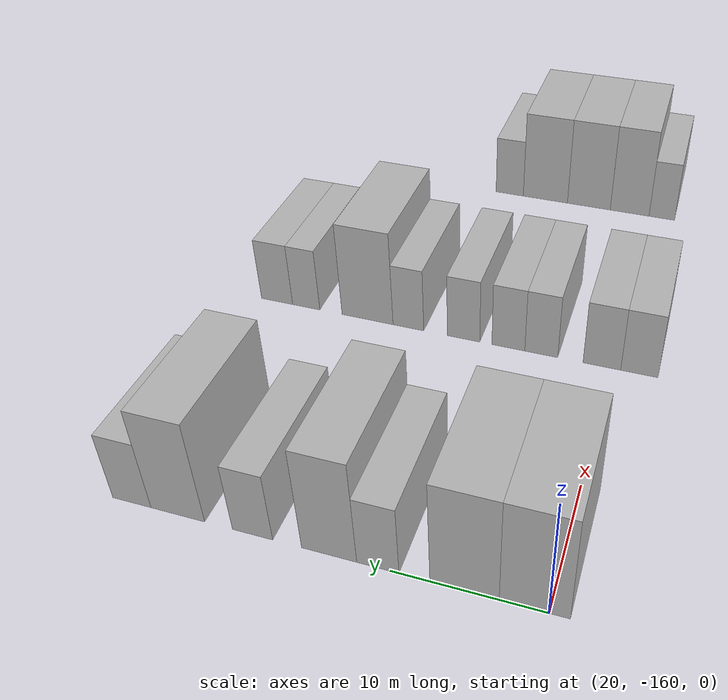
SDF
<sdf version="1.6">
 <world name="default">
  <model name="building_23">
   <static>1</static>
   <pose>25.0000 -159.0883 0 0.000000 0.000000 0.000000</pose>
   <link name="link">
    <pose>0 0 4.50 0 0 0</pose>
    <collision name="collision"><geometry><box><size>10.0000 4.3348 9.0000</size></box></geometry></collision>
    <visual name="visual">
     <cast_shadows>0</cast_shadows>
     <geometry><box><size>10.0000 4.3348 9.0000</size></box></geometry>
     <material>
      <script>
       <uri>model://HANNAS_wall/materials/scripts</uri>
       <uri>model://HANNAS_wall/materials/textures</uri>
       <name>vrc/HANNAS_wall</name>
      </script>
     </material>
    </visual>
   </link>
  </model>
  <model name="building_24">
   <static>1</static>
   <pose>25.0000 -154.7398 0 0.000000 0.000000 0.000000</pose>
   <link name="link">
    <pose>0 0 4.50 0 0 0</pose>
    <collision name="collision"><geometry><box><size>10.0000 4.3622 9.0000</size></box></geometry></collision>
    <visual name="visual">
     <cast_shadows>0</cast_shadows>
     <geometry><box><size>10.0000 4.3622 9.0000</size></box></geometry>
     <material>
      <script>
       <uri>model://HANNAS_wall/materials/scripts</uri>
       <uri>model://HANNAS_wall/materials/textures</uri>
       <name>vrc/HANNAS_wall</name>
      </script>
     </material>
    </visual>
   </link>
  </model>
  <model name="building_25">
   <static>1</static>
   <pose>25.0000 -149.1673 0 0.000000 0.000000 0.000000</pose>
   <link name="link">
    <pose>0 0 3.00 0 0 0</pose>
    <collision name="collision"><geometry><box><size>10.0000 2.7828 6.0000</size></box></geometry></collision>
    <visual name="visual">
     <cast_shadows>0</cast_shadows>
     <geometry><box><size>10.0000 2.7828 6.0000</size></box></geometry>
     <material>
      <script>
       <uri>model://HANNAS_wall/materials/scripts</uri>
       <uri>model://HANNAS_wall/materials/textures</uri>
       <name>vrc/HANNAS_wall</name>
      </script>
     </material>
    </visual>
   </link>
  </model>
  <model name="building_26">
   <static>1</static>
   <pose>25.0000 -145.9105 0 0.000000 0.000000 0.000000</pose>
   <link name="link">
    <pose>0 0 4.50 0 0 0</pose>
    <collision name="collision"><geometry><box><size>10.0000 3.7306 9.0000</size></box></geometry></collision>
    <visual name="visual">
     <cast_shadows>0</cast_shadows>
     <geometry><box><size>10.0000 3.7306 9.0000</size></box></geometry>
     <material>
      <script>
       <uri>model://HANNAS_wall/materials/scripts</uri>
       <uri>model://HANNAS_wall/materials/textures</uri>
       <name>vrc/HANNAS_wall</name>
      </script>
     </material>
    </visual>
   </link>
  </model>
  <model name="building_27">
   <static>1</static>
   <pose>25.0000 -140.6263 0 0.000000 0.000000 0.000000</pose>
   <link name="link">
    <pose>0 0 3.00 0 0 0</pose>
    <collision name="collision"><geometry><box><size>10.0000 2.8379 6.0000</size></box></geometry></collision>
    <visual name="visual">
     <cast_shadows>0</cast_shadows>
     <geometry><box><size>10.0000 2.8379 6.0000</size></box></geometry>
     <material>
      <script>
       <uri>model://HANNAS_wall/materials/scripts</uri>
       <uri>model://HANNAS_wall/materials/textures</uri>
       <name>vrc/HANNAS_wall</name>
      </script>
     </material>
    </visual>
   </link>
  </model>
  <model name="building_28">
   <static>1</static>
   <pose>25.0000 -135.2350 0 0.000000 0.000000 0.000000</pose>
   <link name="link">
    <pose>0 0 4.50 0 0 0</pose>
    <collision name="collision"><geometry><box><size>10.0000 3.9448 9.0000</size></box></geometry></collision>
    <visual name="visual">
     <cast_shadows>0</cast_shadows>
     <geometry><box><size>10.0000 3.9448 9.0000</size></box></geometry>
     <material>
      <script>
       <uri>model://HANNAS_wall/materials/scripts</uri>
       <uri>model://HANNAS_wall/materials/textures</uri>
       <name>vrc/HANNAS_wall</name>
      </script>
     </material>
    </visual>
   </link>
  </model>
  <model name="building_29">
   <static>1</static>
   <pose>25.0000 -131.8254 0 0.000000 0.000000 0.000000</pose>
   <link name="link">
    <pose>0 0 3.00 0 0 0</pose>
    <collision name="collision"><geometry><box><size>10.0000 2.8742 6.0000</size></box></geometry></collision>
    <visual name="visual">
     <cast_shadows>0</cast_shadows>
     <geometry><box><size>10.0000 2.8742 6.0000</size></box></geometry>
     <material>
      <script>
       <uri>model://HANNAS_wall/materials/scripts</uri>
       <uri>model://HANNAS_wall/materials/textures</uri>
       <name>vrc/HANNAS_wall</name>
      </script>
     </material>
    </visual>
   </link>
  </model>
  <model name="building_136">
   <static>1</static>
   <pose>47.0000 -162.1556 0 0.000000 0.000000 0.000000</pose>
   <link name="link">
    <pose>0 0 3.00 0 0 0</pose>
    <collision name="collision"><geometry><box><size>10.0000 2.8607 6.0000</size></box></geometry></collision>
    <visual name="visual">
     <cast_shadows>0</cast_shadows>
     <geometry><box><size>10.0000 2.8607 6.0000</size></box></geometry>
     <material>
      <script>
       <uri>model://HANNAS_wall/materials/scripts</uri>
       <uri>model://HANNAS_wall/materials/textures</uri>
       <name>vrc/HANNAS_wall</name>
      </script>
     </material>
    </visual>
   </link>
  </model>
  <model name="building_137">
   <static>1</static>
   <pose>47.0000 -159.2585 0 0.000000 0.000000 0.000000</pose>
   <link name="link">
    <pose>0 0 3.00 0 0 0</pose>
    <collision name="collision"><geometry><box><size>10.0000 2.9335 6.0000</size></box></geometry></collision>
    <visual name="visual">
     <cast_shadows>0</cast_shadows>
     <geometry><box><size>10.0000 2.9335 6.0000</size></box></geometry>
     <material>
      <script>
       <uri>model://HANNAS_wall/materials/scripts</uri>
       <uri>model://HANNAS_wall/materials/textures</uri>
       <name>vrc/HANNAS_wall</name>
      </script>
     </material>
    </visual>
   </link>
  </model>
  <model name="building_138">
   <static>1</static>
   <pose>47.0000 -154.4668 0 0.000000 0.000000 0.000000</pose>
   <link name="link">
    <pose>0 0 3.00 0 0 0</pose>
    <collision name="collision"><geometry><box><size>10.0000 2.6499 6.0000</size></box></geometry></collision>
    <visual name="visual">
     <cast_shadows>0</cast_shadows>
     <geometry><box><size>10.0000 2.6499 6.0000</size></box></geometry>
     <material>
      <script>
       <uri>model://HANNAS_wall/materials/scripts</uri>
       <uri>model://HANNAS_wall/materials/textures</uri>
       <name>vrc/HANNAS_wall</name>
      </script>
     </material>
    </visual>
   </link>
  </model>
  <model name="building_139">
   <static>1</static>
   <pose>47.0000 -151.7974 0 0.000000 0.000000 0.000000</pose>
   <link name="link">
    <pose>0 0 3.00 0 0 0</pose>
    <collision name="collision"><geometry><box><size>10.0000 2.6889 6.0000</size></box></geometry></collision>
    <visual name="visual">
     <cast_shadows>0</cast_shadows>
     <geometry><box><size>10.0000 2.6889 6.0000</size></box></geometry>
     <material>
      <script>
       <uri>model://HANNAS_wall/materials/scripts</uri>
       <uri>model://HANNAS_wall/materials/textures</uri>
       <name>vrc/HANNAS_wall</name>
      </script>
     </material>
    </visual>
   </link>
  </model>
  <model name="building_140">
   <static>1</static>
   <pose>47.0000 -148.0960 0 0.000000 0.000000 0.000000</pose>
   <link name="link">
    <pose>0 0 3.00 0 0 0</pose>
    <collision name="collision"><geometry><box><size>10.0000 2.7138 6.0000</size></box></geometry></collision>
    <visual name="visual">
     <cast_shadows>0</cast_shadows>
     <geometry><box><size>10.0000 2.7138 6.0000</size></box></geometry>
     <material>
      <script>
       <uri>model://HANNAS_wall/materials/scripts</uri>
       <uri>model://HANNAS_wall/materials/textures</uri>
       <name>vrc/HANNAS_wall</name>
      </script>
     </material>
    </visual>
   </link>
  </model>
  <model name="building_141">
   <static>1</static>
   <pose>47.0000 -143.4165 0 0.000000 0.000000 0.000000</pose>
   <link name="link">
    <pose>0 0 3.00 0 0 0</pose>
    <collision name="collision"><geometry><box><size>10.0000 2.6453 6.0000</size></box></geometry></collision>
    <visual name="visual">
     <cast_shadows>0</cast_shadows>
     <geometry><box><size>10.0000 2.6453 6.0000</size></box></geometry>
     <material>
      <script>
       <uri>model://HANNAS_wall/materials/scripts</uri>
       <uri>model://HANNAS_wall/materials/textures</uri>
       <name>vrc/HANNAS_wall</name>
      </script>
     </material>
    </visual>
   </link>
  </model>
  <model name="building_142">
   <static>1</static>
   <pose>47.0000 -139.8525 0 0.000000 0.000000 0.000000</pose>
   <link name="link">
    <pose>0 0 4.50 0 0 0</pose>
    <collision name="collision"><geometry><box><size>10.0000 4.4826 9.0000</size></box></geometry></collision>
    <visual name="visual">
     <cast_shadows>0</cast_shadows>
     <geometry><box><size>10.0000 4.4826 9.0000</size></box></geometry>
     <material>
      <script>
       <uri>model://HANNAS_wall/materials/scripts</uri>
       <uri>model://HANNAS_wall/materials/textures</uri>
       <name>vrc/HANNAS_wall</name>
      </script>
     </material>
    </visual>
   </link>
  </model>
  <model name="building_143">
   <static>1</static>
   <pose>47.0000 -134.3795 0 0.000000 0.000000 0.000000</pose>
   <link name="link">
    <pose>0 0 3.00 0 0 0</pose>
    <collision name="collision"><geometry><box><size>10.0000 2.4635 6.0000</size></box></geometry></collision>
    <visual name="visual">
     <cast_shadows>0</cast_shadows>
     <geometry><box><size>10.0000 2.4635 6.0000</size></box></geometry>
     <material>
      <script>
       <uri>model://HANNAS_wall/materials/scripts</uri>
       <uri>model://HANNAS_wall/materials/textures</uri>
       <name>vrc/HANNAS_wall</name>
      </script>
     </material>
    </visual>
   </link>
  </model>
  <model name="building_144">
   <static>1</static>
   <pose>47.0000 -131.7147 0 0.000000 0.000000 0.000000</pose>
   <link name="link">
    <pose>0 0 3.00 0 0 0</pose>
    <collision name="collision"><geometry><box><size>10.0000 2.8660 6.0000</size></box></geometry></collision>
    <visual name="visual">
     <cast_shadows>0</cast_shadows>
     <geometry><box><size>10.0000 2.8660 6.0000</size></box></geometry>
     <material>
      <script>
       <uri>model://HANNAS_wall/materials/scripts</uri>
       <uri>model://HANNAS_wall/materials/textures</uri>
       <name>vrc/HANNAS_wall</name>
      </script>
     </material>
    </visual>
   </link>
  </model>
  <model name="building_248">
   <static>1</static>
   <pose>69.0000 -161.1556 0 0.000000 0.000000 0.000000</pose>
   <link name="link">
    <pose>0 0 3.00 0 0 0</pose>
    <collision name="collision"><geometry><box><size>10.0000 2.4094 6.0000</size></box></geometry></collision>
    <visual name="visual">
     <cast_shadows>0</cast_shadows>
     <geometry><box><size>10.0000 2.4094 6.0000</size></box></geometry>
     <material>
      <script>
       <uri>model://HANNAS_wall/materials/scripts</uri>
       <uri>model://HANNAS_wall/materials/textures</uri>
       <name>vrc/HANNAS_wall</name>
      </script>
     </material>
    </visual>
   </link>
  </model>
  <model name="building_249">
   <static>1</static>
   <pose>69.0000 -158.0881 0 0.000000 0.000000 0.000000</pose>
   <link name="link">
    <pose>0 0 4.50 0 0 0</pose>
    <collision name="collision"><geometry><box><size>10.0000 3.7256 9.0000</size></box></geometry></collision>
    <visual name="visual">
     <cast_shadows>0</cast_shadows>
     <geometry><box><size>10.0000 3.7256 9.0000</size></box></geometry>
     <material>
      <script>
       <uri>model://HANNAS_wall/materials/scripts</uri>
       <uri>model://HANNAS_wall/materials/textures</uri>
       <name>vrc/HANNAS_wall</name>
      </script>
     </material>
    </visual>
   </link>
  </model>
  <model name="building_250">
   <static>1</static>
   <pose>69.0000 -154.1380 0 0.000000 0.000000 0.000000</pose>
   <link name="link">
    <pose>0 0 4.50 0 0 0</pose>
    <collision name="collision"><geometry><box><size>10.0000 4.1744 9.0000</size></box></geometry></collision>
    <visual name="visual">
     <cast_shadows>0</cast_shadows>
     <geometry><box><size>10.0000 4.1744 9.0000</size></box></geometry>
     <material>
      <script>
       <uri>model://HANNAS_wall/materials/scripts</uri>
       <uri>model://HANNAS_wall/materials/textures</uri>
       <name>vrc/HANNAS_wall</name>
      </script>
     </material>
    </visual>
   </link>
  </model>
  <model name="building_251">
   <static>1</static>
   <pose>69.0000 -149.8443 0 0.000000 0.000000 0.000000</pose>
   <link name="link">
    <pose>0 0 4.50 0 0 0</pose>
    <collision name="collision"><geometry><box><size>10.0000 4.4131 9.0000</size></box></geometry></collision>
    <visual name="visual">
     <cast_shadows>0</cast_shadows>
     <geometry><box><size>10.0000 4.4131 9.0000</size></box></geometry>
     <material>
      <script>
       <uri>model://HANNAS_wall/materials/scripts</uri>
       <uri>model://HANNAS_wall/materials/textures</uri>
       <name>vrc/HANNAS_wall</name>
      </script>
     </material>
    </visual>
   </link>
  </model>
  <model name="building_252">
   <static>1</static>
   <pose>69.0000 -146.2536 0 0.000000 0.000000 0.000000</pose>
   <link name="link">
    <pose>0 0 3.00 0 0 0</pose>
    <collision name="collision"><geometry><box><size>10.0000 2.7682 6.0000</size></box></geometry></collision>
    <visual name="visual">
     <cast_shadows>0</cast_shadows>
     <geometry><box><size>10.0000 2.7682 6.0000</size></box></geometry>
     <material>
      <script>
       <uri>model://HANNAS_wall/materials/scripts</uri>
       <uri>model://HANNAS_wall/materials/textures</uri>
       <name>vrc/HANNAS_wall</name>
      </script>
     </material>
    </visual>
   </link>
  </model>
 </world>
</sdf>
